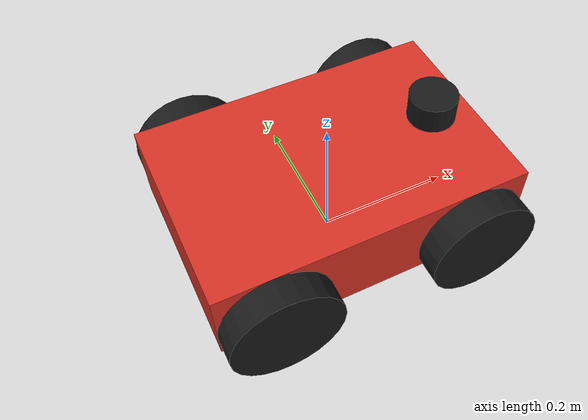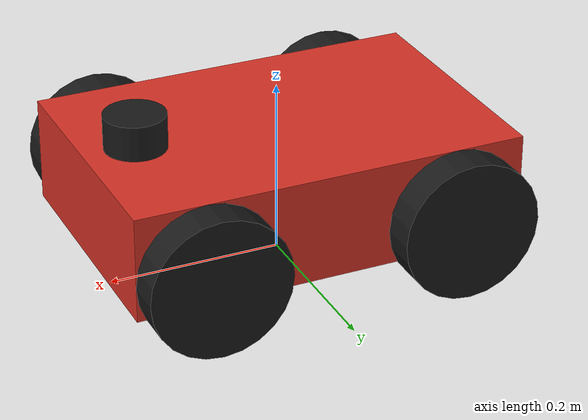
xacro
<?xml version="1.0"?>
<robot xmlns:xacro="http://www.ros.org/wiki/xacro" name="ackermannbot">

  <xacro:arg name="use_sim" default="true"/>

  <xacro:property name="base_wid"   value="0.30"/>
  <xacro:property name="base_len"   value="${1.5 * base_wid}"/>
  <xacro:property name="base_hei"   value="0.12"/>
  <xacro:property name="base_mass"  value="5.625"/>

  <xacro:property name="wheel_radius" value="0.08"/>
  <xacro:property name="wheel_width"  value="0.04"/>
  <xacro:property name="wheel_mass"   value="0.5"/>
  <xacro:property name="wheel_zoff"   value="0.02"/>

  <xacro:property name="wheelbase"    value="${base_len - 2*wheel_radius}"/>
  <xacro:property name="track"        value="0.34"/>
  <xacro:property name="axle_x"       value="${base_len/2 - wheel_radius}"/>

  <xacro:property name="max_steer_angle" value="0.5"/>  <!-- rad, ~29 deg -->

  <xacro:macro name="box_inertia" params="m x y z">
    <inertial>
      <mass value="${m}"/>
      <inertia ixx="${m*(y*y+z*z)/12.0}" ixy="0" ixz="0"
               iyy="${m*(x*x+z*z)/12.0}" iyz="0"
               izz="${m*(x*x+y*y)/12.0}"/>
    </inertial>
  </xacro:macro>

  <xacro:macro name="cyl_inertia" params="m r l">
    <inertial>
      <mass value="${m}"/>
      <inertia ixx="${m*(3*r*r+l*l)/12.0}" ixy="0" ixz="0"
               iyy="${m*(3*r*r+l*l)/12.0}" iyz="0"
               izz="${m*r*r/2.0}"/>
    </inertial>
  </xacro:macro>

  <!-- ================= base ================= -->
  <link name="base_footprint"/>

  <link name="base_link">
    <visual>
      <geometry><box size="${base_len} ${base_wid} ${base_hei}"/></geometry>
      <material name="robot_red"><color rgba="0.85 0.2 0.15 1"/></material>
    </visual>
    <collision>
      <geometry><box size="${base_len} ${base_wid} ${base_hei}"/></geometry>
    </collision>
    <xacro:box_inertia m="${base_mass}" x="${base_len}" y="${base_wid}" z="${base_hei}"/>
  </link>

  <joint name="base_joint" type="fixed">
    <parent link="base_footprint"/>
    <child  link="base_link"/>
    <origin xyz="0 0 ${wheel_radius + wheel_zoff}"/>
  </joint>

  <xacro:macro name="wheel" params="prefix x side_y">
    <link name="${prefix}_wheel">
      <visual>
        <origin rpy="1.5708 0 0"/>
        <geometry><cylinder radius="${wheel_radius}" length="${wheel_width}"/></geometry>
        <material name="rubber"><color rgba="0.1 0.1 0.1 1"/></material>
      </visual>
      <collision>
        <origin rpy="1.5708 0 0"/>
        <geometry><cylinder radius="${wheel_radius}" length="${wheel_width}"/></geometry>
      </collision>
      <xacro:cyl_inertia m="${wheel_mass}" r="${wheel_radius}" l="${wheel_width}"/>
    </link>

    <joint name="${prefix}_wheel_joint" type="continuous">
      <parent link="base_link"/>
      <child  link="${prefix}_wheel"/>
      <origin xyz="${x} ${side_y} ${-wheel_zoff}"/>
      <axis xyz="0 1 0"/>
    </joint>
  </xacro:macro>

  <xacro:wheel prefix="rear_left"  x="${-axle_x}" side_y="${ track/2}"/>
  <xacro:wheel prefix="rear_right" x="${-axle_x}" side_y="${-track/2}"/>

  <xacro:macro name="steer_wheel" params="prefix x side_y">
    <link name="${prefix}_steer_link">
      <xacro:cyl_inertia m="0.05" r="0.02" l="0.02"/>
    </link>

    <joint name="${prefix}_steer_joint" type="revolute">
      <parent link="base_link"/>
      <child  link="${prefix}_steer_link"/>
      <origin xyz="${x} ${side_y} ${-wheel_zoff}"/>
      <axis xyz="0 0 1"/>
      <limit lower="${-max_steer_angle}" upper="${max_steer_angle}"
             effort="10.0" velocity="4.0"/>
    </joint>

    <link name="${prefix}_wheel">
      <visual>
        <origin rpy="1.5708 0 0"/>
        <geometry><cylinder radius="${wheel_radius}" length="${wheel_width}"/></geometry>
        <material name="rubber"><color rgba="0.1 0.1 0.1 1"/></material>
      </visual>
      <collision>
        <origin rpy="1.5708 0 0"/>
        <geometry><cylinder radius="${wheel_radius}" length="${wheel_width}"/></geometry>
      </collision>
      <xacro:cyl_inertia m="${wheel_mass}" r="${wheel_radius}" l="${wheel_width}"/>
    </link>

    <joint name="${prefix}_wheel_joint" type="continuous">
      <parent link="${prefix}_steer_link"/>
      <child  link="${prefix}_wheel"/>
      <origin xyz="0 0 0"/>
      <axis xyz="0 1 0"/>
    </joint>
  </xacro:macro>

  <xacro:steer_wheel prefix="front_left"  x="${axle_x}" side_y="${ track/2}"/>
  <xacro:steer_wheel prefix="front_right" x="${axle_x}" side_y="${-track/2}"/>

  <!-- No casters: diffbot's casters stabilize a 2-wheel base against
       pitching under acceleration (diffbot.urdf.xacro:84-87). A 4-wheel
       base is inherently pitch-stable - not needed here. -->

  <link name="laser">
    <visual>
      <geometry><cylinder radius="0.035" length="0.04"/></geometry>
      <material name="lidar_black"><color rgba="0.1 0.1 0.1 1"/></material>
    </visual>
    <collision><geometry><cylinder radius="0.035" length="0.04"/></geometry></collision>
    <xacro:cyl_inertia m="0.1" r="0.035" l="0.04"/>
  </link>
  <joint name="laser_joint" type="fixed">
    <parent link="base_link"/>
    <child  link="laser"/>
    <origin xyz="${base_len/2 - 0.06} 0 ${base_hei/2 + 0.02}"/>
  </joint>

  <link name="imu_link">
    <xacro:box_inertia m="0.05" x="0.02" y="0.02" z="0.02"/>
  </link>
  <joint name="imu_joint" type="fixed">
    <parent link="base_link"/>
    <child  link="imu_link"/>
    <origin xyz="0 0 0"/>
  </joint>

  <!-- ================= ros2_control (docs/32, step 2 of 4) ================= -->
  <xacro:include filename="$(find vto_description)/urdf/mobile/ackermannbot.ros2_control.xacro"/>

  <!-- ================= Gazebo (docs/33, step 3 of 4) ================= -->
  <xacro:include filename="$(find vto_description)/urdf/mobile/ackermannbot.gazebo.xacro"/>

</robot>
